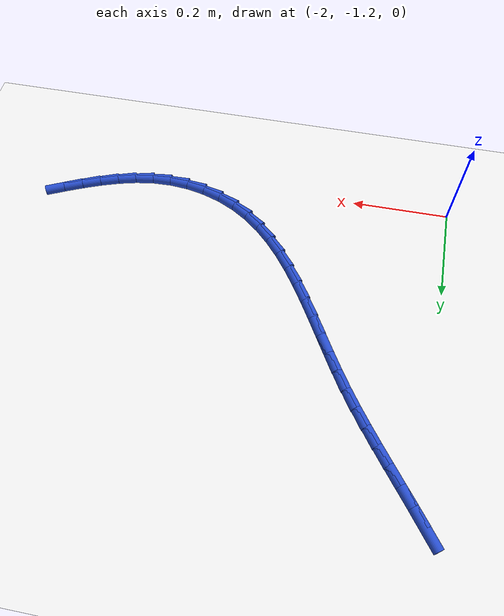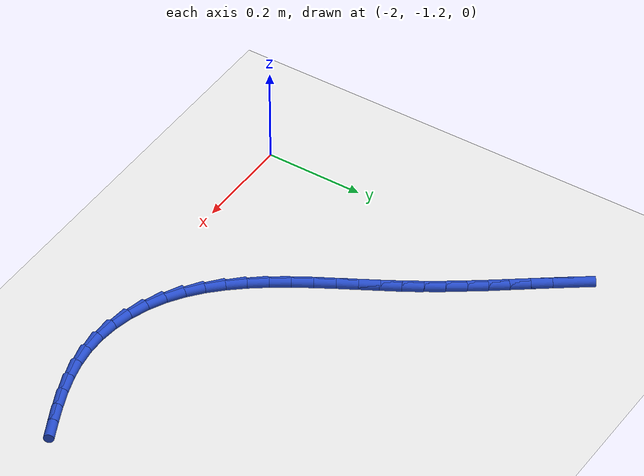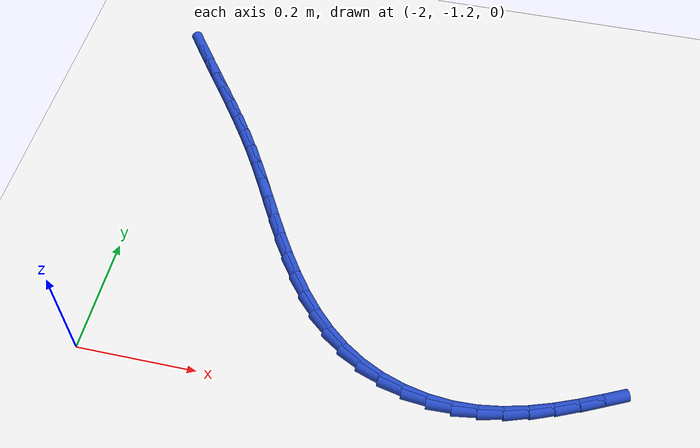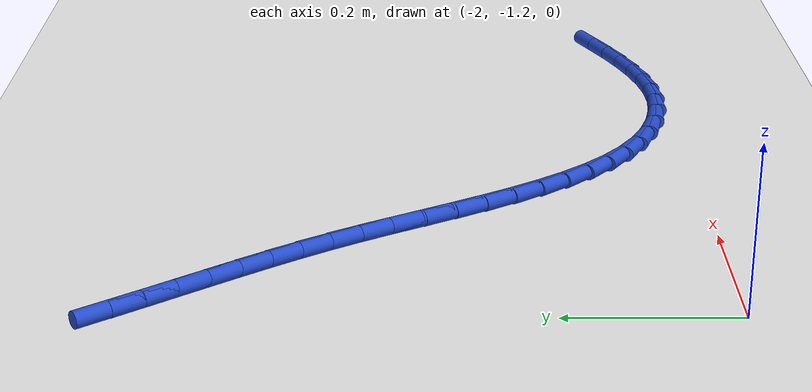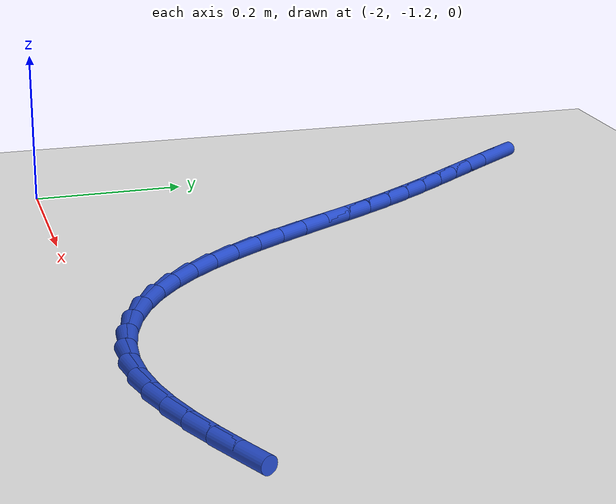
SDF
<sdf version="1.6">
 <world name="default">
  <model name="ground_plane">
   <static>1</static>
   <link name="link">
    <collision name="collision">
     <geometry><plane><normal>0 0 1</normal><size>100 100</size></plane></geometry>
     <surface><friction><ode><mu>100</mu><mu2>50</mu2></ode></friction></surface>
    </collision>
    <visual name="visual">
     <cast_shadows>0</cast_shadows>
     <geometry><plane><normal>0 0 1</normal><size>100 100</size></plane></geometry>
     <material>
      <script><uri>file://media/materials/scripts/gazebo.material</uri><name>Gazebo/WhiteGlow</name></script>
     </material>
    </visual>
   </link>
  </model>
  <model name="line">
   <link name="link_106">
    <pose>-1.9980274270486014 -0.5252432640600164 0.01 0 1.57 -0.9464176908159226</pose>
    <collision name="collision">
     <geometry><cylinder><radius>0.01</radius><length>0.08</length></cylinder></geometry>
    </collision>
    <visual name="visual">
     <material>
      <script><name>Gazebo/Blue</name><uri>file://media/materials/scripts/gazebo.material</uri></script>
     </material>
     <geometry><cylinder><radius>0.01</radius><length>0.08</length></cylinder></geometry>
    </visual>
   </link>
   <link name="link_107">
    <pose>-1.9741481849823859 -0.5583840199185391 0.01 0 1.57 -0.9380637000964673</pose>
    <collision name="collision">
     <geometry><cylinder><radius>0.01</radius><length>0.08</length></cylinder></geometry>
    </collision>
    <visual name="visual">
     <material>
      <script><name>Gazebo/Blue</name><uri>file://media/materials/scripts/gazebo.material</uri></script>
     </material>
     <geometry><cylinder><radius>0.01</radius><length>0.08</length></cylinder></geometry>
    </visual>
   </link>
   <link name="link_108">
    <pose>-1.9504382293434985 -0.5907168765344049 0.01 0 1.57 -0.9357898369586057</pose>
    <collision name="collision">
     <geometry><cylinder><radius>0.01</radius><length>0.08</length></cylinder></geometry>
    </collision>
    <visual name="visual">
     <material>
      <script><name>Gazebo/Blue</name><uri>file://media/materials/scripts/gazebo.material</uri></script>
     </material>
     <geometry><cylinder><radius>0.01</radius><length>0.08</length></cylinder></geometry>
    </visual>
   </link>
   <link name="link_109">
    <pose>-1.9269729142447134 -0.6225640114149825 0.01 0 1.57 -0.9398830533584395</pose>
    <collision name="collision">
     <geometry><cylinder><radius>0.01</radius><length>0.08</length></cylinder></geometry>
    </collision>
    <visual name="visual">
     <material>
      <script><name>Gazebo/Blue</name><uri>file://media/materials/scripts/gazebo.material</uri></script>
     </material>
     <geometry><cylinder><radius>0.01</radius><length>0.08</length></cylinder></geometry>
    </visual>
   </link>
   <link name="link_110">
    <pose>-1.9038275937988054 -0.6542476020676389 0.01 0 1.57 -0.9504319362326021</pose>
    <collision name="collision">
     <geometry><cylinder><radius>0.01</radius><length>0.08</length></cylinder></geometry>
    </collision>
    <visual name="visual">
     <material>
      <script><name>Gazebo/Blue</name><uri>file://media/materials/scripts/gazebo.material</uri></script>
     </material>
     <geometry><cylinder><radius>0.01</radius><length>0.08</length></cylinder></geometry>
    </visual>
   </link>
   <link name="link_111">
    <pose>-1.8810776221185497 -0.6860898259997433 0.01 0 1.57 -0.9673086790924136</pose>
    <collision name="collision">
     <geometry><cylinder><radius>0.01</radius><length>0.08</length></cylinder></geometry>
    </collision>
    <visual name="visual">
     <material>
      <script><name>Gazebo/Blue</name><uri>file://media/materials/scripts/gazebo.material</uri></script>
     </material>
     <geometry><cylinder><radius>0.01</radius><length>0.08</length></cylinder></geometry>
    </visual>
   </link>
   <link name="link_112">
    <pose>-1.8587983533167196 -0.7184128607186644 0.01 0 1.57 -0.9901611165123595</pose>
    <collision name="collision">
     <geometry><cylinder><radius>0.01</radius><length>0.08</length></cylinder></geometry>
    </collision>
    <visual name="visual">
     <material>
      <script><name>Gazebo/Blue</name><uri>file://media/materials/scripts/gazebo.material</uri></script>
     </material>
     <geometry><cylinder><radius>0.01</radius><length>0.08</length></cylinder></geometry>
    </visual>
   </link>
   <link name="link_113">
    <pose>-1.8370651415060912 -0.7515388837317704 0.01 0 1.57 -1.0182255463088596</pose>
    <collision name="collision">
     <geometry><cylinder><radius>0.01</radius><length>0.08</length></cylinder></geometry>
    </collision>
    <visual name="visual">
     <material>
      <script><name>Gazebo/Blue</name><uri>file://media/materials/scripts/gazebo.material</uri></script>
     </material>
     <geometry><cylinder><radius>0.01</radius><length>0.08</length></cylinder></geometry>
    </visual>
   </link>
   <link name="link_114">
    <pose>-1.8159492734932798 -0.7857818719188495 0.01 0 1.57 -1.0434231058436436</pose>
    <collision name="collision">
     <geometry><cylinder><radius>0.01</radius><length>0.08</length></cylinder></geometry>
    </collision>
    <visual name="visual">
     <material>
      <script><name>Gazebo/Blue</name><uri>file://media/materials/scripts/gazebo.material</uri></script>
     </material>
     <geometry><cylinder><radius>0.01</radius><length>0.08</length></cylinder></geometry>
    </visual>
   </link>
   <link name="link_115">
    <pose>-1.7953615013253998 -0.821132127047725 0.01 0 1.57 -1.0564040977227571</pose>
    <collision name="collision">
     <geometry><cylinder><radius>0.01</radius><length>0.08</length></cylinder></geometry>
    </collision>
    <visual name="visual">
     <material>
      <script><name>Gazebo/Blue</name><uri>file://media/materials/scripts/gazebo.material</uri></script>
     </material>
     <geometry><cylinder><radius>0.01</radius><length>0.08</length></cylinder></geometry>
    </visual>
   </link>
   <link name="link_116">
    <pose>-1.775002626847803 -0.857156642842062 0.01 0 1.57 -1.0571514676043545</pose>
    <collision name="collision">
     <geometry><cylinder><radius>0.01</radius><length>0.08</length></cylinder></geometry>
    </collision>
    <visual name="visual">
     <material>
      <script><name>Gazebo/Blue</name><uri>file://media/materials/scripts/gazebo.material</uri></script>
     </material>
     <geometry><cylinder><radius>0.01</radius><length>0.08</length></cylinder></geometry>
    </visual>
   </link>
   <link name="link_117">
    <pose>-1.7545592778561057 -0.8933938348711873 0.01 0 1.57 -1.0458783288646962</pose>
    <collision name="collision">
     <geometry><cylinder><radius>0.01</radius><length>0.08</length></cylinder></geometry>
    </collision>
    <visual name="visual">
     <material>
      <script><name>Gazebo/Blue</name><uri>file://media/materials/scripts/gazebo.material</uri></script>
     </material>
     <geometry><cylinder><radius>0.01</radius><length>0.08</length></cylinder></geometry>
    </visual>
   </link>
   <link name="link_118">
    <pose>-1.7337180821459268 -0.929382118704427 0.01 0 1.57 -1.0223756284651013</pose>
    <collision name="collision">
     <geometry><cylinder><radius>0.01</radius><length>0.08</length></cylinder></geometry>
    </collision>
    <visual name="visual">
     <material>
      <script><name>Gazebo/Blue</name><uri>file://media/materials/scripts/gazebo.material</uri></script>
     </material>
     <geometry><cylinder><radius>0.01</radius><length>0.08</length></cylinder></geometry>
    </visual>
   </link>
   <link name="link_119">
    <pose>-1.7121656675128845 -0.9646599099111073 0.01 0 1.57 -0.9860513726633535</pose>
    <collision name="collision">
     <geometry><cylinder><radius>0.01</radius><length>0.08</length></cylinder></geometry>
    </collision>
    <visual name="visual">
     <material>
      <script><name>Gazebo/Blue</name><uri>file://media/materials/scripts/gazebo.material</uri></script>
     </material>
     <geometry><cylinder><radius>0.01</radius><length>0.08</length></cylinder></geometry>
    </visual>
   </link>
   <link name="link_120">
    <pose>-1.6895886617525955 -0.9987656240605544 0.01 0 1.57 -0.9360052812158149</pose>
    <collision name="collision">
     <geometry><cylinder><radius>0.01</radius><length>0.08</length></cylinder></geometry>
    </collision>
    <visual name="visual">
     <material>
      <script><name>Gazebo/Blue</name><uri>file://media/materials/scripts/gazebo.material</uri></script>
     </material>
     <geometry><cylinder><radius>0.01</radius><length>0.08</length></cylinder></geometry>
    </visual>
   </link>
   <link name="link_121">
    <pose>-1.6656736926606797 -1.0312376767220934 0.01 0 1.57 -0.8711763372594822</pose>
    <collision name="collision">
     <geometry><cylinder><radius>0.01</radius><length>0.08</length></cylinder></geometry>
    </collision>
    <visual name="visual">
     <material>
      <script><name>Gazebo/Blue</name><uri>file://media/materials/scripts/gazebo.material</uri></script>
     </material>
     <geometry><cylinder><radius>0.01</radius><length>0.08</length></cylinder></geometry>
    </visual>
   </link>
   <link name="link_122">
    <pose>-1.6401073880327541 -1.0616144834650514 0.01 0 1.57 -0.7906186916429201</pose>
    <collision name="collision">
     <geometry><cylinder><radius>0.01</radius><length>0.08</length></cylinder></geometry>
    </collision>
    <visual name="visual">
     <material>
      <script><name>Gazebo/Blue</name><uri>file://media/materials/scripts/gazebo.material</uri></script>
     </material>
     <geometry><cylinder><radius>0.01</radius><length>0.08</length></cylinder></geometry>
    </visual>
   </link>
   <link name="link_123">
    <pose>-1.612576375664437 -1.089434459858754 0.01 0 1.57 -0.6939587411185724</pose>
    <collision name="collision">
     <geometry><cylinder><radius>0.01</radius><length>0.08</length></cylinder></geometry>
    </collision>
    <visual name="visual">
     <material>
      <script><name>Gazebo/Blue</name><uri>file://media/materials/scripts/gazebo.material</uri></script>
     </material>
     <geometry><cylinder><radius>0.01</radius><length>0.08</length></cylinder></geometry>
    </visual>
   </link>
   <link name="link_124">
    <pose>-1.5827672833513466 -1.1142360214725282 0.01 0 1.57 -0.5820217448233551</pose>
    <collision name="collision">
     <geometry><cylinder><radius>0.01</radius><length>0.08</length></cylinder></geometry>
    </collision>
    <visual name="visual">
     <material>
      <script><name>Gazebo/Blue</name><uri>file://media/materials/scripts/gazebo.material</uri></script>
     </material>
     <geometry><cylinder><radius>0.01</radius><length>0.08</length></cylinder></geometry>
    </visual>
   </link>
   <link name="link_125">
    <pose>-1.5503667388891005 -1.1355575838756984 0.01 0 1.57 -0.45764240698919767</pose>
    <collision name="collision">
     <geometry><cylinder><radius>0.01</radius><length>0.08</length></cylinder></geometry>
    </collision>
    <visual name="visual">
     <material>
      <script><name>Gazebo/Blue</name><uri>file://media/materials/scripts/gazebo.material</uri></script>
     </material>
     <geometry><cylinder><radius>0.01</radius><length>0.08</length></cylinder></geometry>
    </visual>
   </link>
   <link name="link_126">
    <pose>-1.5150754217780202 -1.152939117956019 0.01 0 1.57 -0.331880611620934</pose>
    <collision name="collision">
     <geometry><cylinder><radius>0.01</radius><length>0.08</length></cylinder></geometry>
    </collision>
    <visual name="visual">
     <material>
      <script><name>Gazebo/Blue</name><uri>file://media/materials/scripts/gazebo.material</uri></script>
     </material>
     <geometry><cylinder><radius>0.01</radius><length>0.08</length></cylinder></geometry>
    </visual>
   </link>
   <link name="link_127">
    <pose>-1.4772095764401578 -1.1659887286451605 0.01 0 1.57 -0.21112889459846745</pose>
    <collision name="collision">
     <geometry><cylinder><radius>0.01</radius><length>0.08</length></cylinder></geometry>
    </collision>
    <visual name="visual">
     <material>
      <script><name>Gazebo/Blue</name><uri>file://media/materials/scripts/gazebo.material</uri></script>
     </material>
     <geometry><cylinder><radius>0.01</radius><length>0.08</length></cylinder></geometry>
    </visual>
   </link>
   <link name="link_128">
    <pose>-1.4379276653091615 -1.1744077421045398 0.01 0 1.57 -0.08834643393974327</pose>
    <collision name="collision">
     <geometry><cylinder><radius>0.01</radius><length>0.08</length></cylinder></geometry>
    </collision>
    <visual name="visual">
     <material>
      <script><name>Gazebo/Blue</name><uri>file://media/materials/scripts/gazebo.material</uri></script>
     </material>
     <geometry><cylinder><radius>0.01</radius><length>0.08</length></cylinder></geometry>
    </visual>
   </link>
   <link name="link_129">
    <pose>-1.3984482427912162 -1.177904711090941 0.01 0 1.57 0.03796325268953276</pose>
    <collision name="collision">
     <geometry><cylinder><radius>0.01</radius><length>0.08</length></cylinder></geometry>
    </collision>
    <visual name="visual">
     <material>
      <script><name>Gazebo/Blue</name><uri>file://media/materials/scripts/gazebo.material</uri></script>
     </material>
     <geometry><cylinder><radius>0.01</radius><length>0.08</length></cylinder></geometry>
    </visual>
   </link>
   <link name="link_130">
    <pose>-1.3596528997275819 -1.1764312057348418 0.01 0 1.57 0.1525490177146973</pose>
    <collision name="collision">
     <geometry><cylinder><radius>0.01</radius><length>0.08</length></cylinder></geometry>
    </collision>
    <visual name="visual">
     <material>
      <script><name>Gazebo/Blue</name><uri>file://media/materials/scripts/gazebo.material</uri></script>
     </material>
     <geometry><cylinder><radius>0.01</radius><length>0.08</length></cylinder></geometry>
    </visual>
   </link>
   <link name="link_131">
    <pose>-1.3215447788662138 -1.1705723309781393 0.01 0 1.57 0.249169749133799</pose>
    <collision name="collision">
     <geometry><cylinder><radius>0.01</radius><length>0.08</length></cylinder></geometry>
    </collision>
    <visual name="visual">
     <material>
      <script><name>Gazebo/Blue</name><uri>file://media/materials/scripts/gazebo.material</uri></script>
     </material>
     <geometry><cylinder><radius>0.01</radius><length>0.08</length></cylinder></geometry>
    </visual>
   </link>
   <link name="link_132">
    <pose>-1.2839856798819564 -1.161015128072744 0.01 0 1.57 0.3262435251153189</pose>
    <collision name="collision">
     <geometry><cylinder><radius>0.01</radius><length>0.08</length></cylinder></geometry>
    </collision>
    <visual name="visual">
     <material>
      <script><name>Gazebo/Blue</name><uri>file://media/materials/scripts/gazebo.material</uri></script>
     </material>
     <geometry><cylinder><radius>0.01</radius><length>0.08</length></cylinder></geometry>
    </visual>
   </link>
   <link name="link_133">
    <pose>-1.2468374024496527 -1.1484466382705671 0.01 0 1.57 0.3838326271927272</pose>
    <collision name="collision">
     <geometry><cylinder><radius>0.01</radius><length>0.08</length></cylinder></geometry>
    </collision>
    <visual name="visual">
     <material>
      <script><name>Gazebo/Blue</name><uri>file://media/materials/scripts/gazebo.material</uri></script>
     </material>
     <geometry><cylinder><radius>0.01</radius><length>0.08</length></cylinder></geometry>
    </visual>
   </link>
   <link name="link_134">
    <pose>-1.2099617462441454 -1.1335539028235184 0.01 0 1.57 0.42277207754526397</pose>
    <collision name="collision">
     <geometry><cylinder><radius>0.01</radius><length>0.08</length></cylinder></geometry>
    </collision>
    <visual name="visual">
     <material>
      <script><name>Gazebo/Blue</name><uri>file://media/materials/scripts/gazebo.material</uri></script>
     </material>
     <geometry><cylinder><radius>0.01</radius><length>0.08</length></cylinder></geometry>
    </visual>
   </link>
   <link name="link_135">
    <pose>-1.1732205109402778 -1.1170239629835088 0.01 0 1.57 0.4440304032272899</pose>
    <collision name="collision">
     <geometry><cylinder><radius>0.01</radius><length>0.08</length></cylinder></geometry>
    </collision>
    <visual name="visual">
     <material>
      <script><name>Gazebo/Blue</name><uri>file://media/materials/scripts/gazebo.material</uri></script>
     </material>
     <geometry><cylinder><radius>0.01</radius><length>0.08</length></cylinder></geometry>
    </visual>
   </link>
  </model>
 </world>
</sdf>
